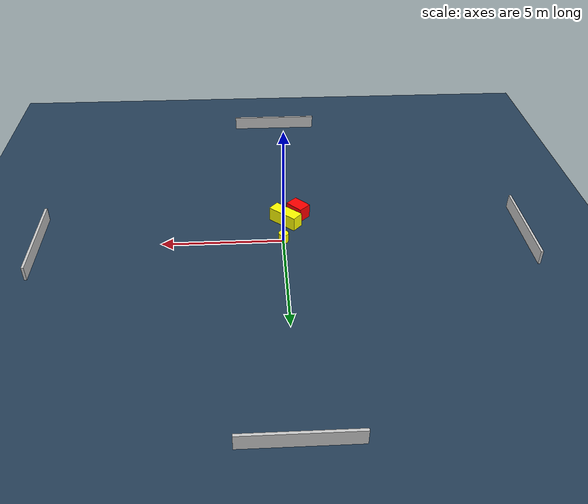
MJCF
<?xml version="1.0" ?>
<mujoco model="generated_environment">
  <option timestep="0.01" integrator="RK4" cone="elliptic"/>
  <default>
    <geom density="1"/>
  </default>
  <asset>
    <texture builtin="gradient" height="3072" name="skybox" rgb1="0.3 0.5 0.7" rgb2="0 0 0" type="skybox" width="512"/>
    <texture builtin="checker" height="300" name="groundplane" rgb1="0.2 0.3 0.4" rgb2="0.1 0.2 0.3" type="2d" width="300"/>
    <material name="groundplane" reflectance="0.2" texrepeat="5 5" texture="groundplane"/>
  </asset>
  <worldbody>
    <light dir="0 0 -1" directional="true" pos="0 0 1.5"/>
    <geom condim="3" friction="0.5 0.005 0.001" material="groundplane" name="floor" pos="0 0 0" size="0 0 0.05" type="plane"/>
    <body name="walls">
      <geom name="wall_1" condim="4" pos="-10.0 0.0 0.3" rgba="0.800000011920929 0.800000011920929 0.800000011920929 1.0" size="0.05 2.0 0.3" type="box"/>
      <geom name="wall_2" condim="4" pos="10.0 0.0 0.3" rgba="0.800000011920929 0.800000011920929 0.800000011920929 1.0" size="0.05 2.0 0.3" type="box"/>
      <geom name="wall_3" condim="4" pos="0.0 -10.0 0.3" rgba="0.800000011920929 0.800000011920929 0.800000011920929 1.0" size="2.0 0.05 0.3" type="box"/>
      <geom name="wall_4" condim="4" pos="0.0 10.0 0.3" rgba="0.800000011920929 0.800000011920929 0.800000011920929 1.0" size="2.0 0.05 0.3" type="box"/>
    </body>
    <body name="robot">
      <joint name="joint_x" type="slide" pos="0 0 0" axis="1 0 0"/>
      <joint name="joint_y" type="slide" pos="0 0 0" axis="0 1 0"/>
      <geom name="robot" type="cylinder" pos="0.0 0.0 0.2" size="0.2 0.2 0.0" mass="5.0" friction="1.0 0.005 0.0001" condim="4" rgba="1.0 1.0 0.0 1.0"/>
    </body>
    <body name="obstacle_1_movable">
      <geom name="obstacle_1_movable" condim="4" pos="-0.14729359014890525 -1.3068538692860006 0.3" euler="0 0 138.37385950669773" friction="0.0 0.005 0.001" rgba="1.0 1.0 0.0 1.0" size="0.667383938589621 0.26174147531829084 0.3" type="box" mass="0.1"/>
      <joint type="free"/>
    </body>
    <body name="obstacle_2_static">
      <geom name="obstacle_2_static" condim="4" pos="-0.7146590525296762 -1.8020495015233788 0.3" euler="0 0 133.2937058805985" friction="0.0 0.005 0.001" rgba="1.0 0.0 0.0 1.0" size="0.4030892900101516 0.28707684547687623 0.3" type="box"/>
    </body>
  </worldbody>
  <actuator>
    <motor name="actuator_x" joint="joint_x" gear="1" ctrlrange="-1 1"/>
    <motor name="actuator_y" joint="joint_y" gear="1" ctrlrange="-1 1"/>
  </actuator>
</mujoco>
